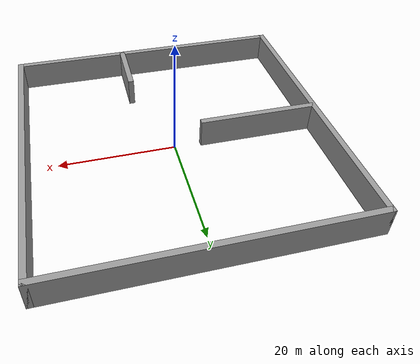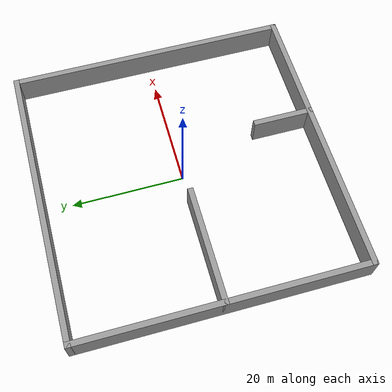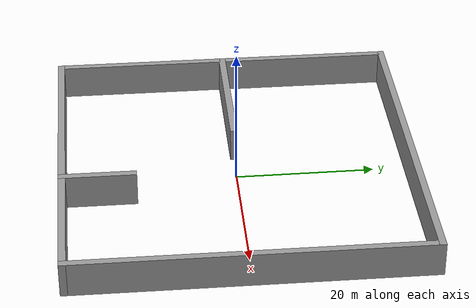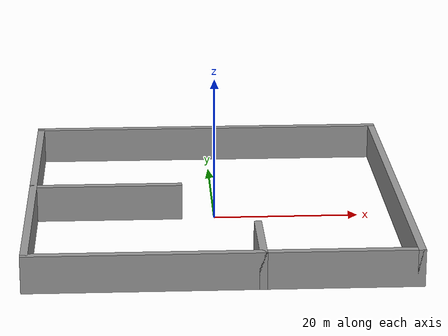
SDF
<?xml version='1.0'?>
<sdf version='1.7'>
  <model name='map4'>
    <pose>0 0 0 0 -0 0</pose>
    <link name='Wall_12'>
      <collision name='Wall_12_Collision'>
        <geometry>
          <box>
            <size>51 1 5</size>
          </box>
        </geometry>
        <pose>0 0 2.5 0 -0 0</pose>
      </collision>
      <visual name='Wall_12_Visual'>
        <pose>0 0 2.5 0 -0 0</pose>
        <geometry>
          <box>
            <size>51 1 5</size>
          </box>
        </geometry>
        <material>
          <script>
            <uri>file://media/materials/scripts/gazebo.material</uri>
            <name>Gazebo/Grey</name>
          </script>
          <ambient>1 1 1 1</ambient>
        </material>
        <meta>
          <layer>0</layer>
        </meta>
      </visual>
      <pose>-25 0 0 0 -0 -1.5708</pose>
    </link>
    <link name='Wall_14'>
      <collision name='Wall_14_Collision'>
        <geometry>
          <box>
            <size>51 1 5</size>
          </box>
        </geometry>
        <pose>0 0 2.5 0 -0 0</pose>
      </collision>
      <visual name='Wall_14_Visual'>
        <pose>0 0 2.5 0 -0 0</pose>
        <geometry>
          <box>
            <size>51 1 5</size>
          </box>
        </geometry>
        <material>
          <script>
            <uri>file://media/materials/scripts/gazebo.material</uri>
            <name>Gazebo/Grey</name>
          </script>
          <ambient>1 1 1 1</ambient>
        </material>
        <meta>
          <layer>0</layer>
        </meta>
      </visual>
      <pose>0 25 0 0 -0 0</pose>
    </link>
    <link name='Wall_16'>
      <collision name='Wall_16_Collision'>
        <geometry>
          <box>
            <size>51 1 5</size>
          </box>
        </geometry>
        <pose>0 0 2.5 0 -0 0</pose>
      </collision>
      <visual name='Wall_16_Visual'>
        <pose>0 0 2.5 0 -0 0</pose>
        <geometry>
          <box>
            <size>51 1 5</size>
          </box>
        </geometry>
        <material>
          <script>
            <uri>file://media/materials/scripts/gazebo.material</uri>
            <name>Gazebo/Grey</name>
          </script>
          <ambient>1 1 1 1</ambient>
        </material>
        <meta>
          <layer>0</layer>
        </meta>
      </visual>
      <pose>25 0 0 0 -0 -1.5708</pose>
    </link>
    <link name='Wall_18'>
      <collision name='Wall_18_Collision'>
        <geometry>
          <box>
            <size>51 1 5</size>
          </box>
        </geometry>
        <pose>0 0 2.5 0 -0 0</pose>
      </collision>
      <visual name='Wall_18_Visual'>
        <pose>0 0 2.5 0 -0 0</pose>
        <geometry>
          <box>
            <size>51 1 5</size>
          </box>
        </geometry>
        <material>
          <script>
            <uri>file://media/materials/scripts/gazebo.material</uri>
            <name>Gazebo/Grey</name>
          </script>
          <ambient>1 1 1 1</ambient>
        </material>
        <meta>
          <layer>0</layer>
        </meta>
      </visual>
      <pose>0 -25 0 0 -0 0</pose>
    </link>
    <link name='Wall_64'>
      <collision name='Wall_64_Collision'>
        <geometry>
          <box>
            <size>21 1 5</size>
          </box>
        </geometry>
        <pose>0 0 2.5 0 -0 0</pose>
      </collision>
      <visual name='Wall_64_Visual'>
        <pose>0 0 2.5 0 -0 0</pose>
        <geometry>
          <box>
            <size>21 1 5</size>
          </box>
        </geometry>
        <material>
          <script>
            <uri>file://media/materials/scripts/gazebo.material</uri>
            <name>Gazebo/Grey</name>
          </script>
          <ambient>1 1 1 1</ambient>
        </material>
        <meta>
          <layer>0</layer>
        </meta>
      </visual>
      <pose>-15 0 0 0 -0 0</pose>
    </link>
    <link name='Wall_66'>
      <collision name='Wall_66_Collision'>
        <geometry>
          <box>
            <size>11 1 5</size>
          </box>
        </geometry>
        <pose>0 0 2.5 0 -0 0</pose>
      </collision>
      <visual name='Wall_66_Visual'>
        <pose>0 0 2.5 0 -0 0</pose>
        <geometry>
          <box>
            <size>11 1 5</size>
          </box>
        </geometry>
        <material>
          <script>
            <uri>file://media/materials/scripts/gazebo.material</uri>
            <name>Gazebo/Grey</name>
          </script>
          <ambient>1 1 1 1</ambient>
        </material>
        <meta>
          <layer>0</layer>
        </meta>
      </visual>
      <pose>5 -20 0 0 -0 1.5708</pose>
    </link>
    <static>1</static>
  </model>
</sdf>
